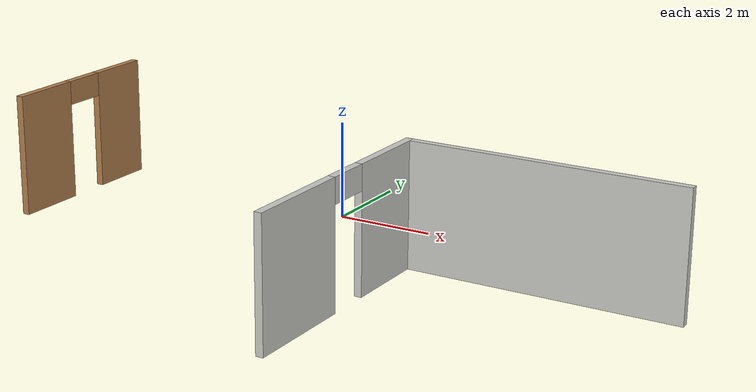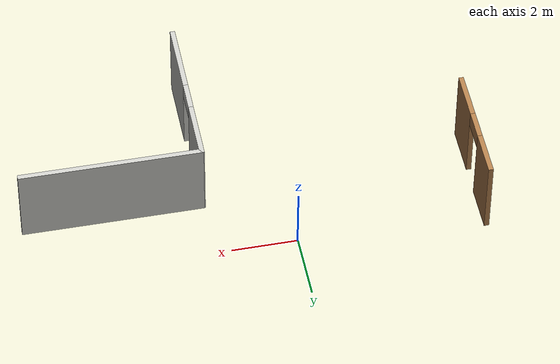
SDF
<?xml version='1.0'?>
<sdf version='1.6'>
  <model name='worldplus'>
    <pose frame=''>1.1418 -3.15795 0 0 -0 0</pose>
    <link name='Wall_29'>
      <pose frame=''>1.38767 -1.14111 0 0 0 -1.5708</pose>
      <visual name='Wall_29_Visual_0'>
        <pose frame=''>-1.57502 0 1.25 0 -0 0</pose>
        <geometry>
          <box>
            <size>1.84995 0.15 2.5</size>
          </box>
        </geometry>
        <material>
          <script>
            <uri>file://media/materials/scripts/gazebo.material</uri>
            <name>Gazebo/CeilingTiled</name>
          </script>
          <ambient>1 1 1 1</ambient>
        </material>
        <meta>
          <layer>0</layer>
        </meta>
      </visual>
      <collision name='Wall_29_Collision_0'>
        <geometry>
          <box>
            <size>1.84995 0.15 2.5</size>
          </box>
        </geometry>
        <pose frame=''>-1.57502 0 1.25 0 -0 0</pose>
      </collision>
      <visual name='Wall_29_Visual_1'>
        <pose frame=''>1.37498 0 1.25 0 -0 0</pose>
        <geometry>
          <box>
            <size>2.25005 0.15 2.5</size>
          </box>
        </geometry>
        <material>
          <script>
            <uri>file://media/materials/scripts/gazebo.material</uri>
            <name>Gazebo/CeilingTiled</name>
          </script>
          <ambient>1 1 1 1</ambient>
        </material>
        <meta>
          <layer>0</layer>
        </meta>
      </visual>
      <collision name='Wall_29_Collision_1'>
        <geometry>
          <box>
            <size>2.25005 0.15 2.5</size>
          </box>
        </geometry>
        <pose frame=''>1.37498 0 1.25 0 -0 0</pose>
      </collision>
      <visual name='Wall_29_Visual_2'>
        <pose frame=''>-0.200047 0 2.25 0 -0 0</pose>
        <geometry>
          <box>
            <size>0.9 0.15 0.5</size>
          </box>
        </geometry>
        <material>
          <script>
            <uri>file://media/materials/scripts/gazebo.material</uri>
            <name>Gazebo/CeilingTiled</name>
          </script>
          <ambient>1 1 1 1</ambient>
        </material>
        <meta>
          <layer>0</layer>
        </meta>
      </visual>
      <collision name='Wall_29_Collision_2'>
        <geometry>
          <box>
            <size>0.9 0.15 0.5</size>
          </box>
        </geometry>
        <pose frame=''>-0.200047 0 2.25 0 -0 0</pose>
      </collision>
    </link>
    <link name='Wall_33'>
      <collision name='Wall_33_Collision'>
        <geometry>
          <box>
            <size>5.5 0.15 2.5</size>
          </box>
        </geometry>
        <pose frame=''>0 0 1.25 0 -0 0</pose>
      </collision>
      <visual name='Wall_33_Visual'>
        <pose frame=''>0 0 1.25 0 -0 0</pose>
        <geometry>
          <box>
            <size>5.5 0.15 2.5</size>
          </box>
        </geometry>
        <material>
          <script>
            <uri>file://media/materials/scripts/gazebo.material</uri>
            <name>Gazebo/CeilingTiled</name>
          </script>
          <ambient>1 1 1 1</ambient>
        </material>
        <meta>
          <layer>0</layer>
        </meta>
      </visual>
      <pose frame=''>4.08885 1.2905 0 0 -0 3.14159</pose>
    </link>
    <link name='Wall_36'>
      <pose frame=''>-6.76385 1.76611 0 0 -0 1.5708</pose>
      <visual name='Wall_36_Visual_0'>
        <pose frame=''>-1.13339 0 1.25 0 -0 0</pose>
        <geometry>
          <box>
            <size>1.48322 0.15 2.5</size>
          </box>
        </geometry>
        <material>
          <script>
            <uri>file://media/materials/scripts/gazebo.material</uri>
            <name>Gazebo/Wood</name>
          </script>
          <ambient>1 1 1 1</ambient>
        </material>
        <meta>
          <layer>0</layer>
        </meta>
      </visual>
      <collision name='Wall_36_Collision_0'>
        <geometry>
          <box>
            <size>1.48322 0.15 2.5</size>
          </box>
        </geometry>
        <pose frame=''>-1.13339 0 1.25 0 -0 0</pose>
      </collision>
      <visual name='Wall_36_Visual_1'>
        <pose frame=''>1.19161 0 1.25 0 -0 0</pose>
        <geometry>
          <box>
            <size>1.36678 0.15 2.5</size>
          </box>
        </geometry>
        <material>
          <script>
            <uri>file://media/materials/scripts/gazebo.material</uri>
            <name>Gazebo/Wood</name>
          </script>
          <ambient>1 1 1 1</ambient>
        </material>
        <meta>
          <layer>0</layer>
        </meta>
      </visual>
      <collision name='Wall_36_Collision_1'>
        <geometry>
          <box>
            <size>1.36678 0.15 2.5</size>
          </box>
        </geometry>
        <pose frame=''>1.19161 0 1.25 0 -0 0</pose>
      </collision>
      <visual name='Wall_36_Visual_2'>
        <pose frame=''>0.058223 0 2.25 0 -0 0</pose>
        <geometry>
          <box>
            <size>0.9 0.15 0.5</size>
          </box>
        </geometry>
        <material>
          <script>
            <uri>file://media/materials/scripts/gazebo.material</uri>
            <name>Gazebo/Wood</name>
          </script>
          <ambient>1 1 1 1</ambient>
        </material>
        <meta>
          <layer>0</layer>
        </meta>
      </visual>
      <collision name='Wall_36_Collision_2'>
        <geometry>
          <box>
            <size>0.9 0.15 0.5</size>
          </box>
        </geometry>
        <pose frame=''>0.058223 0 2.25 0 -0 0</pose>
      </collision>
    </link>
    <static>1</static>
  </model>
</sdf>
